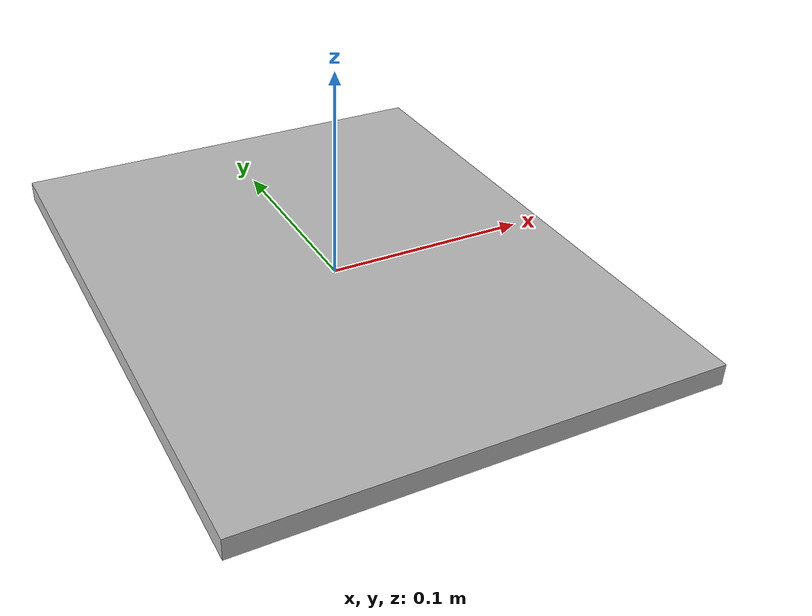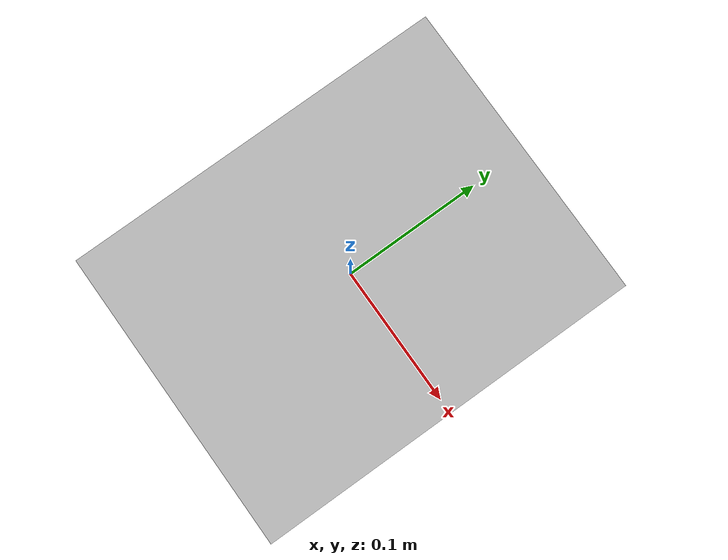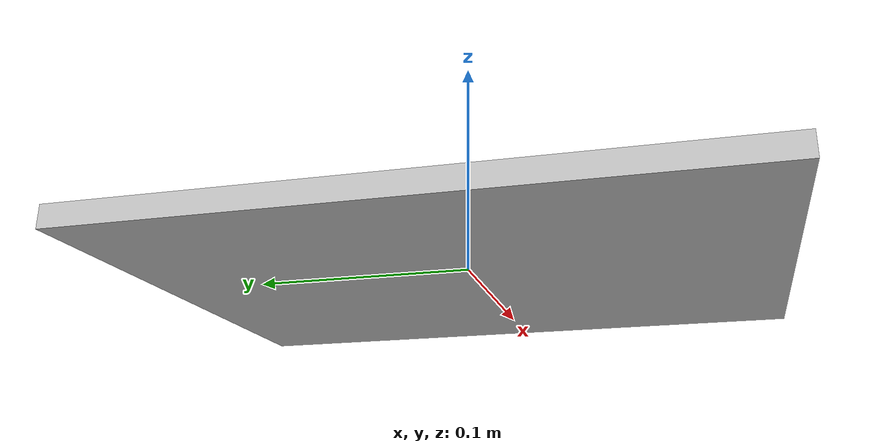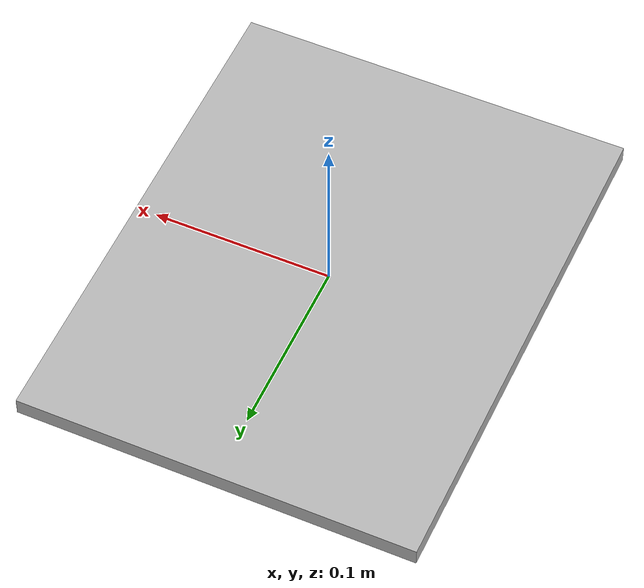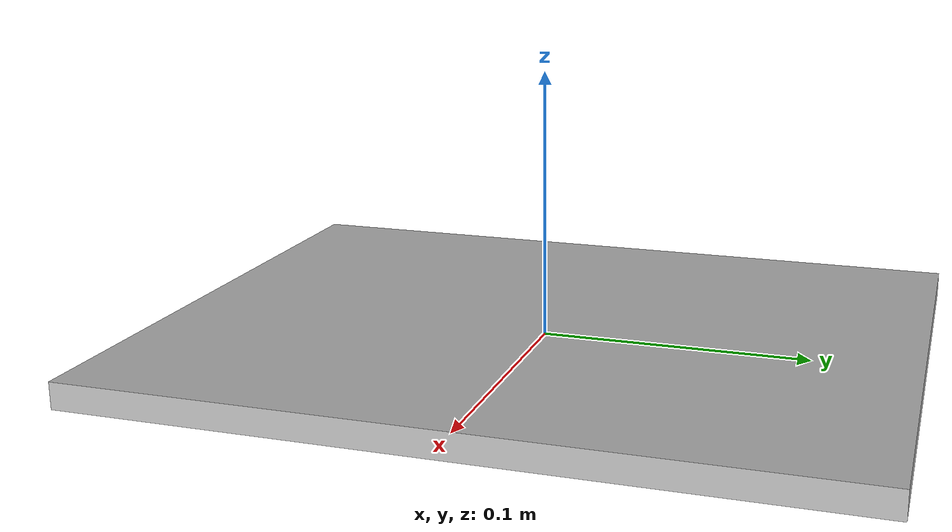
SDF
<?xml version='1.0'?>
<sdf version="1.4">
<model name="MiniMarsAT006">
  <pose>0 0 0 0 0 0</pose>
  <static>true</static>
    <link name="link">
      <collision name="collision">
        <geometry>
          <box>
            <size>0.22 0.28 0.01</size>
          </box>
        </geometry>
      </collision>
      <visual name="visual">
        <geometry>
          <box>
            <size>0.22 0.28 0.01</size>
          </box>
        </geometry>
		       <material>
			<script>
        <uri>model://at006/materials/scripts</uri>
        <uri>model://at006/materials/textures</uri>
        <name>at006/Image</name>
      </script>
        	</material>
      </visual>
    </link>
  </model>
</sdf>
